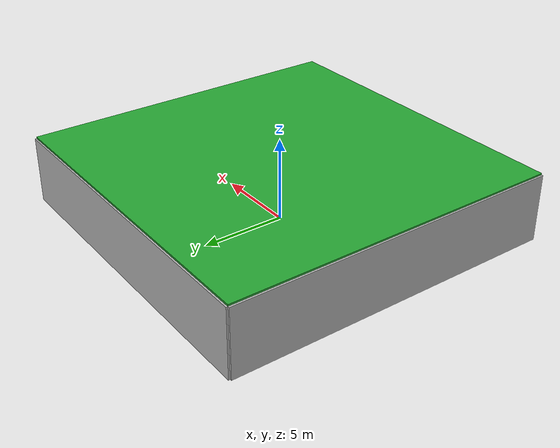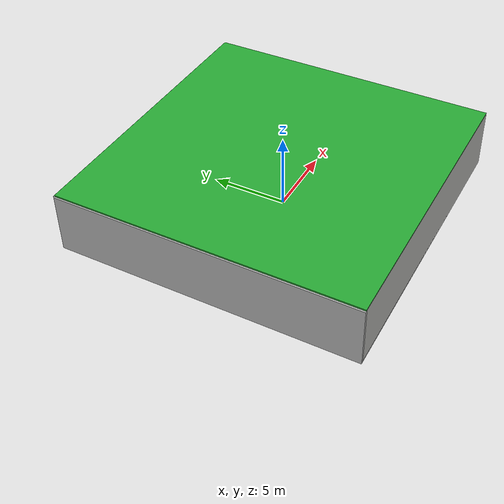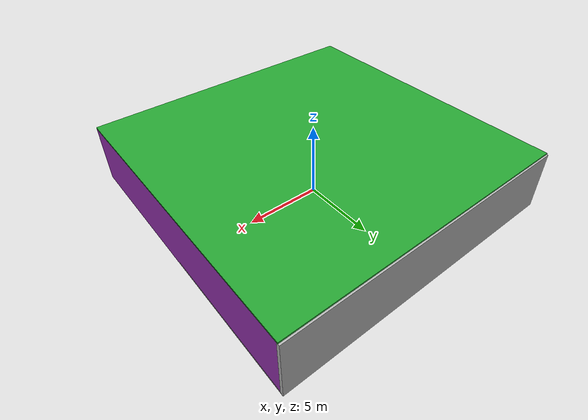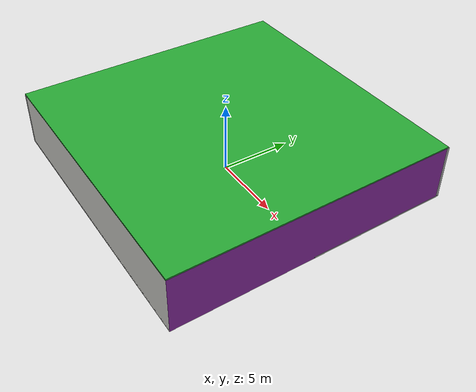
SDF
<sdf version="1.4">
 <world name="default">
  <physics type="ode">
   <max_step_size>0.001</max_step_size>
   <real_time_factor>1</real_time_factor>
   <real_time_update_rate>1000</real_time_update_rate>
   <gravity>0 0 -9.8</gravity>
  </physics>
  <scene><ambient>0.4 0.4 0.4 1</ambient><background>0.7 0.7 0.7 1</background><shadows>1</shadows></scene>
  <model name="Surrounding">
   <static>1</static>
   <link name="Ceiling">
    <collision name="Ceiling_Collision"><geometry><box><size>20 20 0.1</size></box></geometry></collision>
    <visual name="Ceiling_Visual">
     <geometry><box><size>20 20 0.1</size></box></geometry>
     <material>
      <script><uri>file://media/materials/scripts/gazebo.material</uri><name>Gazebo/Green</name></script>
     </material>
    </visual>
    <pose>0 0 4.05 0 0 0</pose>
   </link>
   <link name="Wall_South">
    <collision name="Wall_South_Collision">
     <geometry><box><size>20 0 4</size></box></geometry>
     <pose>0 0 2 0 -0 0</pose>
    </collision>
    <visual name="Wall_South_Visual">
     <pose>0 0 2 0 -0 0</pose>
     <geometry><box><size>20 0 4</size></box></geometry>
     <material>
      <script><uri>file://media/materials/scripts/gazebo.material</uri><name>Gazebo/CeilingTiled</name></script>
     </material>
    </visual>
    <velocity_decay><linear>0</linear><angular>0</angular></velocity_decay>
    <pose>0 -10 0 0 -0 0</pose>
   </link>
   <link name="Wall_East">
    <collision name="Wall_21_Collision">
     <geometry><box><size>20 0 4</size></box></geometry>
     <pose>0 0 2 0 -0 0</pose>
    </collision>
    <visual name="Wall_21_Visual">
     <pose>0 0 2 0 -0 0</pose>
     <geometry><box><size>20 0 4</size></box></geometry>
     <material>
      <script><uri>file://media/materials/scripts/gazebo.material</uri><name>Gazebo/PurpleGlow</name></script>
     </material>
    </visual>
    <velocity_decay><linear>0</linear><angular>0</angular></velocity_decay>
    <pose>10 0 0 0 -0 1.5708</pose>
   </link>
   <link name="Wall_North">
    <collision name="Wall_22_Collision">
     <geometry><box><size>20 0.2 4</size></box></geometry>
     <pose>0 0 2 0 -0 0</pose>
    </collision>
    <visual name="Wall_22_Visual">
     <pose>0 0 2 0 -0 0</pose>
     <geometry><box><size>20 0.2 4</size></box></geometry>
     <material>
      <script><uri>file://media/materials/scripts/gazebo.material</uri><name>Gazebo/PioneerBody</name></script>
     </material>
    </visual>
    <velocity_decay><linear>0</linear><angular>0</angular></velocity_decay>
    <pose>0 10 0 0 -0 0</pose>
   </link>
   <link name="Wall_West">
    <collision name="Wall_23_Collision">
     <geometry><box><size>20 0.2 4</size></box></geometry>
     <pose>0 0 2 0 -0 0</pose>
    </collision>
    <visual name="Wall_23_Visual">
     <pose>0 0 2 0 -0 0</pose>
     <geometry><box><size>20 0.2 4</size></box></geometry>
     <material>
      <script><uri>file://media/materials/scripts/gazebo.material</uri><name>Gazebo/JointAnchor</name></script>
     </material>
    </visual>
    <velocity_decay><linear>0</linear><angular>0</angular></velocity_decay>
    <pose>-10 0 0 0 0 -1.5708</pose>
   </link>
   <link name="Ground_link">
    <collision name="collision">
     <pose>0 0 .05 0 -0 0</pose>
     <geometry><box><size>20 20 0.1</size></box></geometry>
    </collision>
    <visual name="visual">
     <pose>0 0 .05 0 -0 0</pose>
     <geometry><box><size>20 20 0.1</size></box></geometry>
     <material>
      <script><uri>file://media/materials/scripts/gazebo.material</uri><name>Gazebo/JointAnchor</name></script>
     </material>
    </visual>
   </link>
   <static>1</static>
  </model>
  <spherical_coordinates>
   <surface_model>EARTH_WGS84</surface_model>
   <latitude_deg>0</latitude_deg>
   <longitude_deg>0</longitude_deg>
   <elevation>0</elevation>
   <heading_deg>0</heading_deg>
  </spherical_coordinates>
  <light name="lightball_0" type="diffuse">
   <diffuse>0.8 0.8 0.8 1</diffuse>
   <specular>0.2 0.2 0.2 1</specular>
   <attenuation>
    <range>100</range>
    <constant>0.7</constant>
    <linear>0.01</linear>
    <quadratic>0.001</quadratic>
   </attenuation>
   <direction>-0.5 0.1 -0.9</direction>
   <pose>2.41142283172 -8.60595764872 3.57513137171 0 0 0</pose>
  </light>
  <light name="lightball_1" type="diffuse">
   <diffuse>0.8 0.8 0.8 1</diffuse>
   <specular>0.2 0.2 0.2 1</specular>
   <attenuation>
    <range>100</range>
    <constant>0.7</constant>
    <linear>0.01</linear>
    <quadratic>0.001</quadratic>
   </attenuation>
   <direction>-0.5 0.1 -0.9</direction>
   <pose>-6.87060641078 -4.46092820766 3.18904527143 0 0 0</pose>
  </light>
  <light name="lightball_2" type="diffuse">
   <diffuse>0.8 0.8 0.8 1</diffuse>
   <specular>0.2 0.2 0.2 1</specular>
   <attenuation>
    <range>100</range>
    <constant>0.7</constant>
    <linear>0.01</linear>
    <quadratic>0.001</quadratic>
   </attenuation>
   <direction>-0.5 0.1 -0.9</direction>
   <pose>-9.28521394298 0.271866490602 2.7062436637 0 0 0</pose>
  </light>
  <light name="lightball_3" type="diffuse">
   <diffuse>0.8 0.8 0.8 1</diffuse>
   <specular>0.2 0.2 0.2 1</specular>
   <attenuation>
    <range>100</range>
    <constant>0.7</constant>
    <linear>0.01</linear>
    <quadratic>0.001</quadratic>
   </attenuation>
   <direction>-0.5 0.1 -0.9</direction>
   <pose>-1.87668931495 8.0680929779 1.98601224149 0 0 0</pose>
  </light>
  <light name="lightball_4" type="diffuse">
   <diffuse>0.8 0.8 0.8 1</diffuse>
   <specular>0.2 0.2 0.2 1</specular>
   <attenuation>
    <range>100</range>
    <constant>0.7</constant>
    <linear>0.01</linear>
    <quadratic>0.001</quadratic>
   </attenuation>
   <direction>-0.5 0.1 -0.9</direction>
   <pose>-4.55269930704 9.25062615125 2.49250945078 0 0 0</pose>
  </light>
  <light name="lightball_5" type="diffuse">
   <diffuse>0.8 0.8 0.8 1</diffuse>
   <specular>0.2 0.2 0.2 1</specular>
   <attenuation>
    <range>100</range>
    <constant>0.7</constant>
    <linear>0.01</linear>
    <quadratic>0.001</quadratic>
   </attenuation>
   <direction>-0.5 0.1 -0.9</direction>
   <pose>7.87772602743 -0.0497783413115 3.06651258389 0 0 0</pose>
  </light>
  <light name="lightball_6" type="diffuse">
   <diffuse>0.8 0.8 0.8 1</diffuse>
   <specular>0.2 0.2 0.2 1</specular>
   <attenuation>
    <range>100</range>
    <constant>0.7</constant>
    <linear>0.01</linear>
    <quadratic>0.001</quadratic>
   </attenuation>
   <direction>-0.5 0.1 -0.9</direction>
   <pose>-2.96197900409 -0.396475008121 1.45450314863 0 0 0</pose>
  </light>
  <light name="lightball_7" type="diffuse">
   <diffuse>0.8 0.8 0.8 1</diffuse>
   <specular>0.2 0.2 0.2 1</specular>
   <attenuation>
    <range>100</range>
    <constant>0.7</constant>
    <linear>0.01</linear>
    <quadratic>0.001</quadratic>
   </attenuation>
   <direction>-0.5 0.1 -0.9</direction>
   <pose>-9.70054470411 -7.06119129492 2.81086858408 0 0 0</pose>
  </light>
  <light name="lightball_8" type="diffuse">
   <diffuse>0.8 0.8 0.8 1</diffuse>
   <specular>0.2 0.2 0.2 1</specular>
   <attenuation>
    <range>100</range>
    <constant>0.7</constant>
    <linear>0.01</linear>
    <quadratic>0.001</quadratic>
   </attenuation>
   <direction>-0.5 0.1 -0.9</direction>
   <pose>-0.27981649428 -6.67355408709 0.875199197128 0 0 0</pose>
  </light>
  <light name="lightball_9" type="diffuse">
   <diffuse>0.8 0.8 0.8 1</diffuse>
   <specular>0.2 0.2 0.2 1</specular>
   <attenuation>
    <range>100</range>
    <constant>0.7</constant>
    <linear>0.01</linear>
    <quadratic>0.001</quadratic>
   </attenuation>
   <direction>-0.5 0.1 -0.9</direction>
   <pose>-6.04469749103 9.41526625669 2.12480806669 0 0 0</pose>
  </light>
  <light name="lightball_10" type="diffuse">
   <diffuse>0.8 0.8 0.8 1</diffuse>
   <specular>0.2 0.2 0.2 1</specular>
   <attenuation>
    <range>100</range>
    <constant>0.7</constant>
    <linear>0.01</linear>
    <quadratic>0.001</quadratic>
   </attenuation>
   <direction>-0.5 0.1 -0.9</direction>
   <pose>5.75039220238 -3.93476981225 0.738019378348 0 0 0</pose>
  </light>
  <light name="lightball_11" type="diffuse">
   <diffuse>0.8 0.8 0.8 1</diffuse>
   <specular>0.2 0.2 0.2 1</specular>
   <attenuation>
    <range>100</range>
    <constant>0.7</constant>
    <linear>0.01</linear>
    <quadratic>0.001</quadratic>
   </attenuation>
   <direction>-0.5 0.1 -0.9</direction>
   <pose>6.07522631255 -6.875739958 1.31499950466 0 0 0</pose>
  </light>
  <light name="lightball_12" type="diffuse">
   <diffuse>0.8 0.8 0.8 1</diffuse>
   <specular>0.2 0.2 0.2 1</specular>
   <attenuation>
    <range>100</range>
    <constant>0.7</constant>
    <linear>0.01</linear>
    <quadratic>0.001</quadratic>
   </attenuation>
   <direction>-0.5 0.1 -0.9</direction>
   <pose>-7.07708495243 -4.52129842516 1.24471341915 0 0 0</pose>
  </light>
  <light name="lightball_13" type="diffuse">
   <diffuse>0.8 0.8 0.8 1</diffuse>
   <specular>0.2 0.2 0.2 1</specular>
   <attenuation>
    <range>100</range>
    <constant>0.7</constant>
    <linear>0.01</linear>
    <quadratic>0.001</quadratic>
   </attenuation>
   <direction>-0.5 0.1 -0.9</direction>
   <pose>-0.454021105822 0.121306943014 1.29437378628 0 0 0</pose>
  </light>
  <include><uri>model://cabinet</uri><pose>-7.20037306425 -6.83783666843 0 0 0 1.25557615701</pose></include>
  <include><uri>model://cabinet</uri><pose>-7.15470023039 1.29480918555 0 0 0 2.74562029549</pose></include>
  <include>
   <uri>model://construction_cone</uri>
   <pose>-3.65371933984 5.30196929145 0 0 0 0.949025826713</pose>
  </include>
  <include>
   <uri>model://textured_shapes</uri>
   <pose>-2.03483987062 4.19509484132 0 0 0 2.32537621779</pose>
  </include>
  <include><uri>model://cabinet</uri><pose>1.22476649591 4.26487907514 0 0 0 2.00754773236</pose></include>
  <include>
   <uri>model://textured_shapes</uri>
   <pose>7.96271716913 6.82443501649 0 0 0 2.69084078537</pose>
  </include>
 </world>
</sdf>

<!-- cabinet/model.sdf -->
<sdf version="1.5">
  <model name="cabinet">
    <static>true</static>
    <link name="cabinet_bottom_plate">
      <inertial>
        <pose>0 0 -1 0 0 0</pose>
        <inertia>
          <ixx>2.050000</ixx>
          <ixy>0</ixy>
          <ixz>0</ixz>
          <iyy>2.050000</iyy>
          <iyz>0</iyz>
          <izz>2.050000</izz>
        </inertia>
        <mass>25.000000</mass>
      </inertial>
      <collision name="cabinet_bottom_plate_geom">
        <pose>0 0 0.010000 0 0 0</pose>
        <geometry>
          <box>
            <size>0.450000 0.450000 0.020000</size>
          </box>
        </geometry>
      </collision>
      <visual name="cabinet_bottom_plate_geom_visual">
        <pose>0 0 0.010000 0 0 0</pose>
        <geometry>
          <box>
            <size>0.450000 0.450000 0.020000</size>
          </box>
        </geometry>
        <material>
          <script>
            <uri>model://media/materials/scripts/gazebo.material</uri>
            <name>Gazebo/Wood</name>
          </script>
        </material>
      </visual>
      <collision name="cabinet_bottom_plate_geom_cabinet_back_plate">
        <pose>0.235000 0 0.510000 0 0 0</pose>
        <geometry>
          <box>
            <size>0.020000 0.450000 1.020000</size>
          </box>
        </geometry>
      </collision>
      <visual name="cabinet_bottom_plate_geom_cabinet_back_plate_visual">
        <pose>0.235000 0 0.510000 0 0 0</pose>
        <geometry>
          <box>
            <size>0.020000 0.450000 1.020000</size>
          </box>
        </geometry>
        <material>
          <script>
            <uri>model://media/materials/scripts/gazebo.material</uri>
            <name>Gazebo/Wood</name>
          </script>
        </material>
      </visual>
      <collision name="cabinet_bottom_plate_geom_cabinet_left_plate">
        <pose>0 0.235000 0.510000 0 0 0</pose>
        <geometry>
          <box>
            <size>0.450000 0.020000 1.020000</size>
          </box>
        </geometry>
      </collision>
      <visual name="cabinet_bottom_plate_geom_cabinet_left_plate_visual">
        <pose>0 0.235000 0.510000 0 0 0</pose>
        <geometry>
          <box>
            <size>0.450000 0.020000 1.020000</size>
          </box>
        </geometry>
        <material>
          <script>
            <uri>model://media/materials/scripts/gazebo.material</uri>
            <name>Gazebo/Wood</name>
          </script>
        </material>
      </visual>
      <collision name="cabinet_bottom_plate_geom_cabinet_middle_plate">
        <pose>0 0 0.510000 0 0 0</pose>
        <geometry>
          <box>
            <size>0.450000 0.450000 0.020000</size>
          </box>
        </geometry>
      </collision>
      <visual name="cabinet_bottom_plate_geom_cabinet_middle_plate_visual">
        <pose>0 0 0.510000 0 0 0</pose>
        <geometry>
          <box>
            <size>0.450000 0.450000 0.020000</size>
          </box>
        </geometry>
        <material>
          <script>
            <uri>model://media/materials/scripts/gazebo.material</uri>
            <name>Gazebo/Wood</name>
          </script>
        </material>
      </visual>
      <collision name="cabinet_bottom_plate_geom_cabinet_right_plate">
        <pose>0 -0.235000 0.510000 0 0 0</pose>
        <geometry>
          <box>
            <size>0.450000 0.020000 1.020000</size>
          </box>
        </geometry>
      </collision>
      <visual name="cabinet_bottom_plate_geom_cabinet_right_plate_visual">
        <pose>0 -0.235000 0.510000 0 0 0</pose>
        <geometry>
          <box>
            <size>0.450000 0.020000 1.020000</size>
          </box>
        </geometry>
        <material>
          <script>
            <uri>model://media/materials/scripts/gazebo.material</uri>
            <name>Gazebo/Wood</name>
          </script>
        </material>
      </visual>
      <collision name="cabinet_bottom_plate_geom_cabinet_top_plate">
        <pose>0 0 1.010000 0 0 0</pose>
        <geometry>
          <box>
            <size>0.450000 0.450000 0.020000</size>
          </box>
        </geometry>
      </collision>
      <visual name="cabinet_bottom_plate_geom_cabinet_top_plate_visual">
        <pose>0 0 1.010000 0 0 0</pose>
        <geometry>
          <box>
            <size>0.450000 0.450000 0.020000</size>
          </box>
        </geometry>
        <material>
          <script>
            <uri>model://media/materials/scripts/gazebo.material</uri>
            <name>Gazebo/Wood</name>
          </script>
        </material>
      </visual>
    </link>
  </model>
</sdf>

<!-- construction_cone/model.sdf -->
<sdf version="1.5">
  <model name="Construction Cone">
    <link name="link">
      <collision name="collision">
        <geometry>
          <mesh>
            <scale>10 10 10</scale>
            <uri>file://isr-testbed/construction_cone/meshes/construction_cone.dae</uri>
          </mesh>
        </geometry>
      </collision>
      <visual name="visual">
        <geometry>
          <mesh>
            <scale>10 10 10</scale>
            <uri>file://isr-testbed/construction_cone/meshes/construction_cone.dae</uri>
          </mesh>
        </geometry>
      </visual>
    </link>
  </model>
</sdf>

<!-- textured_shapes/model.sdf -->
<sdf version="1.6">
  <model name="textured_shapes">
    <pose>0 0 0.5 0 0 0</pose>
    <link name="box">
      <pose>0 -1.5 0 0 0 0</pose>
      <collision name="collision">
        <geometry>
          <box>
            <size>1 1 1</size>
          </box>
        </geometry>
      </collision>
      <visual name="visual">
        <geometry>
          <box>
            <size>1 1 1</size>
          </box>
        </geometry>
        <material>
          <script>
            <uri>model://../model_source/models/textured_shapes/materials/scripts</uri>
            <uri>model://../model_source/models/textured_shapes/materials/textures</uri>
            <name>TexturedShape/Squares</name>
          </script>
        </material>
      </visual>
    </link>
    <link name="sphere">
      <collision name="collision">
        <geometry>
          <sphere>
            <radius>0.5</radius>
          </sphere>
        </geometry>
      </collision>
      <visual name="visual">
        <geometry>
          <sphere>
            <radius>0.5</radius>
          </sphere>
        </geometry>
        <material>
          <script>
            <uri>model://../model_source/models/textured_shapes/materials/scripts</uri>
            <uri>model://../model_source/models/textured_shapes/materials/textures</uri>
            <name>TexturedShape/Squares</name>
          </script>
        </material>
      </visual>
    </link>
    <link name="cylinder">
      <pose>0 1.5 0 0 0 0</pose>
      <collision name="collision">
        <geometry>
          <cylinder>
            <radius>0.5</radius>
            <length>1</length>
          </cylinder>
        </geometry>
      </collision>
      <visual name="visual">
        <geometry>
          <cylinder>
            <radius>0.5</radius>
            <length>1</length>
          </cylinder>
        </geometry>
        <material>
          <script>
            <uri>model://../model_source/models/textured_shapes/materials/scripts</uri>
            <uri>model://../model_source/models/textured_shapes/materials/textures</uri>
            <name>TexturedShape/Squares</name>
          </script>
        </material>
      </visual>
    </link>
  </model>
</sdf>
